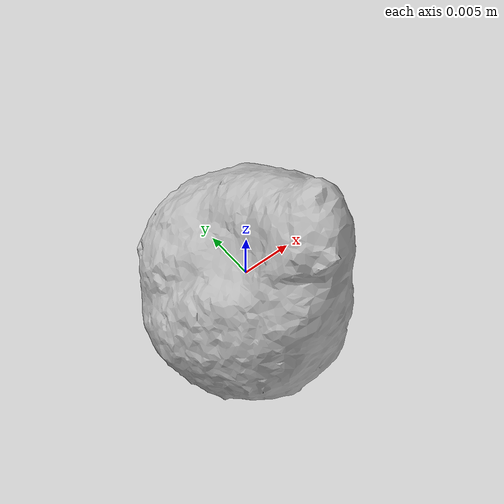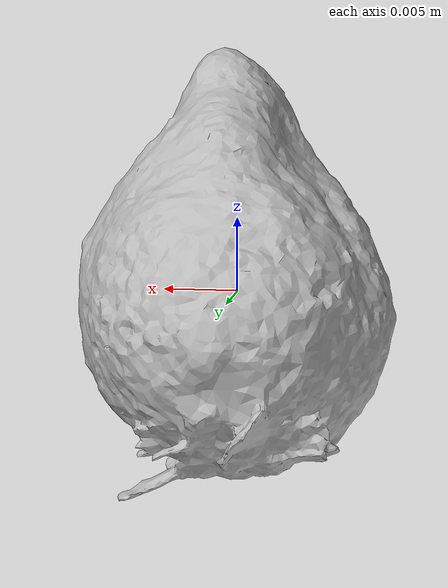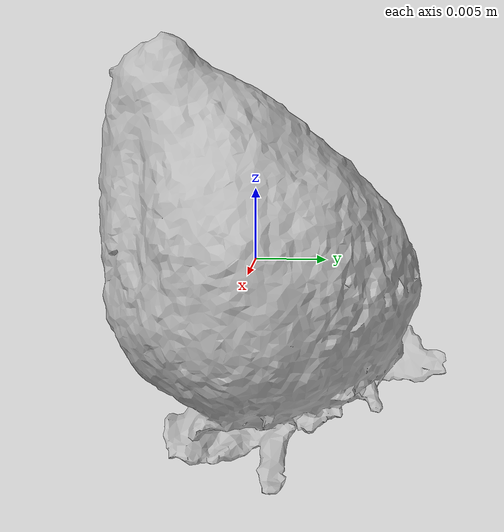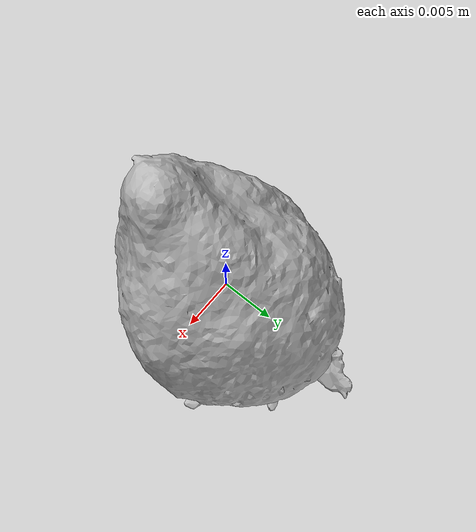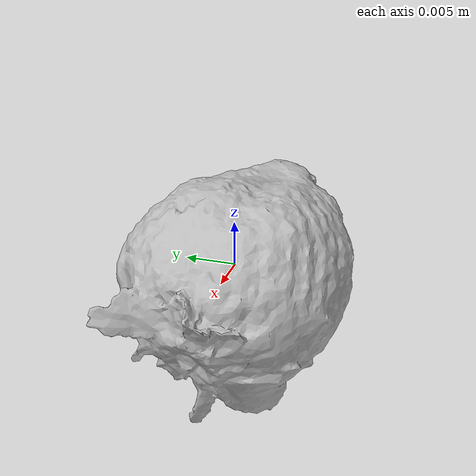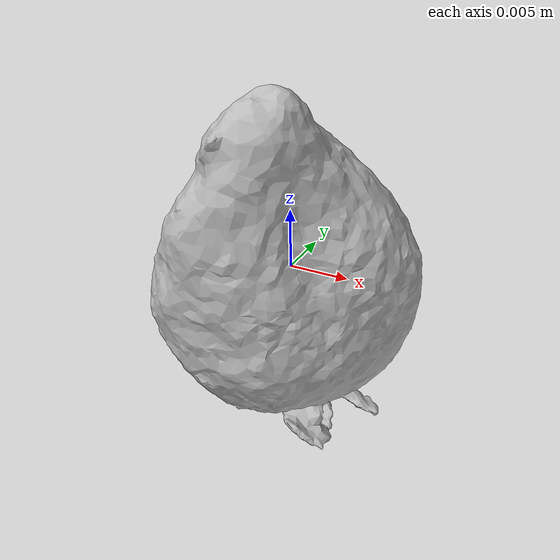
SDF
<?xml version="1.0" ?>
<sdf version="1.6">
<model name="strawberry">
  <static>false</static>
  <link name="link">
    <pose>0 0 0 0 0 0</pose>

    <inertial>
      <mass>0.1</mass>
      <inertia>
        <ixx>0.0001</ixx>
        <iyy>0.0001</iyy>
        <izz>0.0001</izz>
        <ixy>0</ixy>
        <ixz>0</ixz>
        <iyz>0</iyz>
      </inertia>
    </inertial>

    <visual name="visual">
      <geometry>
        <mesh>
          <uri>model://strawberry/meshes/strawberry.obj</uri>
        </mesh>
      </geometry>
    </visual>
    <collision name="collision">
      <geometry>
        <mesh>
          <uri>model://strawberry/meshes/strawberry.obj</uri>
        </mesh>
      </geometry>
    </collision>
  </link>
</model>
</sdf>
